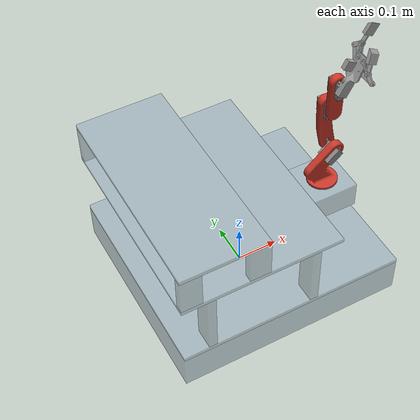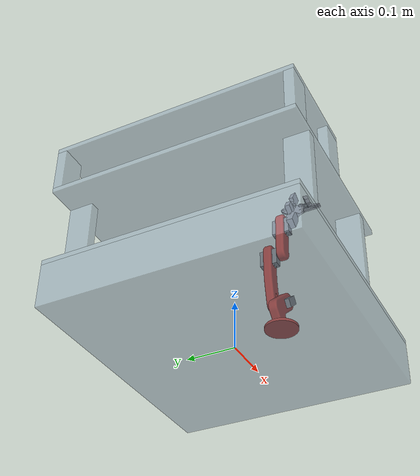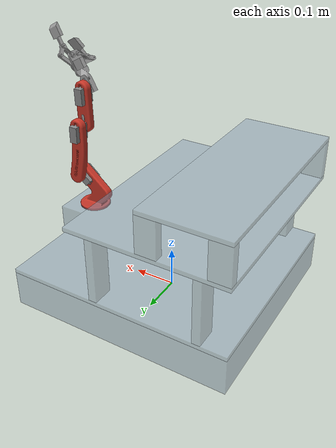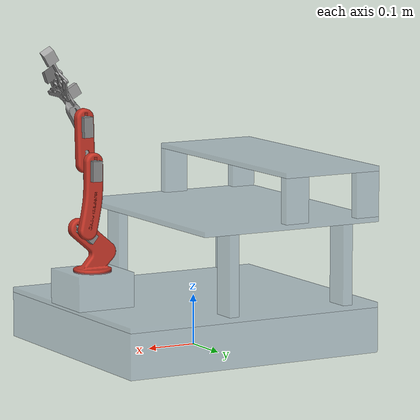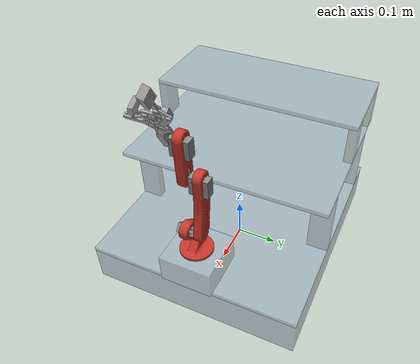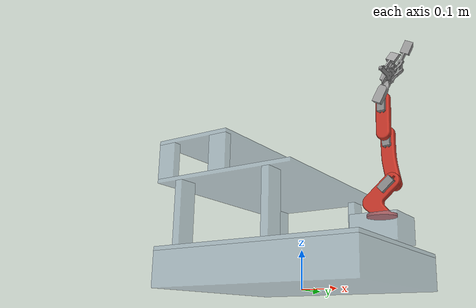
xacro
<?xml version="1.0"?>
<robot xmlns:xacro="http://www.ros.org/wiki/xacro" name="garra_final">

    <xacro:arg name="initial_positions_file" default="$(find garra_moveit_config)/config/initial_positions.yaml"/>
    <!-- Por padrao, hardware simulado. A garra fisica usa launch/garra_real.launch.py. -->
    <xacro:arg name="hardware_plugin" default="mock_components/GenericSystem"/>
    <xacro:arg name="calibracao_file" default="$(find garra_moveit_config)/config/calibracao_servos.yaml"/>
    <xacro:arg name="porta_serial" default="/dev/ttyUSB0"/>

    <!-- Importa a descrição original do robô -->
    <xacro:include filename="$(find garra_final_description)/urdf/garra_final.urdf" />

    <link name="tool0"/>
    <joint name="tool0_fixed" type="fixed">
        <parent link="Base"/>
        <child link="tool0"/>
        <origin xyz="-0.058 -0.1337 -0.0103" rpy="1.6712 0 0"/>
    </joint>

    <link name="dedos_servo"/>
    <joint name="dedos" type="revolute">
        <parent link="Base"/>
        <child link="dedos_servo"/>
        <axis xyz="0 0 1"/>
        <limit lower="0.0" upper="1.745" effort="0.15" velocity="1.30"/>
    </joint>

    <!-- Base -->
    <xacro:property name="base_x" value="0.55"/>
    <xacro:property name="base_y" value="0.50"/>
    <xacro:property name="base_topo" value="0.100"/>
    <!-- Placa da base: mesma espessura dos andares (1 cm). -->
    <xacro:property name="base_esp" value="0.01"/>

    <!-- Andares (alinhados a borda traseira, X = -base_x/2) -->
    <xacro:property name="esp_andar" value="0.01"/>
    <xacro:property name="a1_x" value="0.39"/>
    <xacro:property name="a1_topo" value="0.270"/>
    <xacro:property name="a2_x" value="0.21"/>
    <xacro:property name="a2_topo" value="0.370"/>

    <!-- Suportes do 1o andar: 0.02 (X) x 0.05 (Y), do topo da base ao fundo do 1o andar -->
    <xacro:property name="s1_x_frente" value="0.050"/>
    <xacro:property name="s1_x_tras" value="-0.205"/>
    <!-- PENDENTE: Y dos suportes do 1o andar. Assumido rente a borda lateral. -->
    <xacro:property name="s1_y" value="0.225"/>

    <!-- Suportes do 2o andar: 0.05 (X) x 0.02 (Y), do topo do 1o andar ao fundo do 2o -->
    <xacro:property name="s2_x_frente" value="-0.090"/>
    <xacro:property name="s2_x_tras" value="-0.250"/>
    <xacro:property name="s2_y" value="0.240"/>

    <xacro:property name="garra_x" value="${base_x/2 - 0.050}"/>
    <xacro:property name="garra_z_malha" value="0.0054"/>
    <!-- Plataforma do eixo Y (2026-11-13): eleva a base da garra 68,39 mm acima do topo da base.
         Ainda sem motor: o Y fica fixo no centro. -->
    <xacro:property name="plataforma_z" value="0.06839"/>
    <!-- TEMPORARIO: plataforma como um bloco solido do topo da base ate o pe da garra, um pouco
         maior que o pe dela (malha do base_link: ~0.098 x 0.075 m). Trocar pelas medidas reais. -->
    <xacro:property name="plataforma_lado" value="0.12"/>

    <xacro:macro name="caixa" params="x y z sx sy sz">
        <visual>
            <origin xyz="${x} ${y} ${z}"/>
            <geometry><box size="${sx} ${sy} ${sz}"/></geometry>
            <material name="estrutura_robo"/>
        </visual>
        <collision>
            <origin xyz="${x} ${y} ${z}"/>
            <geometry><box size="${sx} ${sy} ${sz}"/></geometry>
        </collision>
    </xacro:macro>

    <xacro:macro name="andar" params="lx topo">
        <xacro:caixa x="${-base_x/2 + lx/2}" y="0" z="${topo - esp_andar/2}"
                     sx="${lx}" sy="${base_y}" sz="${esp_andar}"/>
    </xacro:macro>

    <xacro:macro name="suporte" params="x y sx sy z0 z1">
        <xacro:caixa x="${x}" y="${y}" z="${(z0 + z1)/2}" sx="${sx}" sy="${sy}" sz="${z1 - z0}"/>
    </xacro:macro>

    <material name="estrutura_robo">
        <color rgba="0.5 0.6 0.7 0.45"/>
    </material>

    <!-- Raiz da arvore: estrutura do robo movel -->
    <link name="robo_base">
        <!-- Chao (Z = 0): 2 x 2 m, so colisao. A garra passa da borda dianteira e alcanca o piso. -->
        <collision>
            <origin xyz="0 0 -0.01"/>
            <geometry><box size="2.0 2.0 0.02"/></geometry>
        </collision>
        <!-- Base -->
        <xacro:caixa x="0" y="0" z="${base_topo - base_esp/2}" sx="${base_x}" sy="${base_y}" sz="${base_esp}"/>
        <!-- PENDENTE: chassi sob a placa da base (rodas, motores). Ate ser medido, fica como volume
             solido do chao ate a placa, para a garra nao planejar por baixo da base. -->
        <xacro:caixa x="0" y="0" z="${(base_topo - base_esp)/2}" sx="${base_x}" sy="${base_y}" sz="${base_topo - base_esp}"/>
        <!-- Plataforma do eixo Y (TEMPORARIO, ver plataforma_lado) -->
        <xacro:caixa x="${garra_x}" y="0" z="${base_topo + plataforma_z/2}"
                     sx="${plataforma_lado}" sy="${plataforma_lado}" sz="${plataforma_z}"/>
        <!-- Andares -->
        <xacro:andar lx="${a1_x}" topo="${a1_topo}"/>
        <xacro:andar lx="${a2_x}" topo="${a2_topo}"/>
        <!-- Suportes do 1o andar -->
        <xacro:suporte x="${s1_x_frente}" y="${ s1_y}" sx="0.02" sy="0.05" z0="${base_topo}" z1="${a1_topo - esp_andar}"/>
        <xacro:suporte x="${s1_x_frente}" y="${-s1_y}" sx="0.02" sy="0.05" z0="${base_topo}" z1="${a1_topo - esp_andar}"/>
        <xacro:suporte x="${s1_x_tras}"   y="${ s1_y}" sx="0.02" sy="0.05" z0="${base_topo}" z1="${a1_topo - esp_andar}"/>
        <xacro:suporte x="${s1_x_tras}"   y="${-s1_y}" sx="0.02" sy="0.05" z0="${base_topo}" z1="${a1_topo - esp_andar}"/>
        <!-- Suportes do 2o andar -->
        <xacro:suporte x="${s2_x_frente}" y="${ s2_y}" sx="0.05" sy="0.02" z0="${a1_topo}" z1="${a2_topo - esp_andar}"/>
        <xacro:suporte x="${s2_x_frente}" y="${-s2_y}" sx="0.05" sy="0.02" z0="${a1_topo}" z1="${a2_topo - esp_andar}"/>
        <xacro:suporte x="${s2_x_tras}"   y="${ s2_y}" sx="0.05" sy="0.02" z0="${a1_topo}" z1="${a2_topo - esp_andar}"/>
        <xacro:suporte x="${s2_x_tras}"   y="${-s2_y}" sx="0.05" sy="0.02" z0="${a1_topo}" z1="${a2_topo - esp_andar}"/>
    </link>

    <joint name="montagem_garra" type="fixed">
        <parent link="robo_base"/>
        <child link="base_link"/>
        <origin xyz="${garra_x} 0 ${base_topo + plataforma_z - garra_z_malha}" rpy="0 0 ${pi}"/>
    </joint>

    <!-- Interface ros2_control (unica definicao do sistema) -->
    <xacro:include filename="$(find garra_moveit_config)/config/garra_final.ros2_control.xacro" />
    <xacro:garra_final_ros2_control
        name="garra_final_system"
        initial_positions_file="$(arg initial_positions_file)"
        hardware_plugin="$(arg hardware_plugin)"
        calibracao_file="$(arg calibracao_file)"
        porta_serial="$(arg porta_serial)"/>

</robot>

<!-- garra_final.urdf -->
<robot name="garra_final">
  <!-- Materials -->
  <material name="Laminado_vermelho_fosco">
    <color rgba="0.769 0.208 0.153 1.0" />
  </material>
  <material name="Alum_nio_prata_anodizada">
    <color rgba="0.537 0.537 0.537 1.0" />
  </material>
  <material name="A_o">
    <color rgba="0.627 0.627 0.627 1.0" />
  </material>
  <link name="base_link">
    <inertial>
      <origin xyz="0.000333 0.000000 0.041536" rpy="0 0 0" />
      <mass value="0.122493" />
      <inertia ixx="1.488707e-04" ixy="0.000000e+00" ixz="3.196556e-05" iyy="1.961067e-04" iyz="0.000000e+00" izz="8.370648e-05" />
    </inertial>
    <visual>
      <origin xyz="0.000000 0.000000 0.000000" rpy="0.000000 0.000000 0.000000" />
      <geometry>
        <mesh filename="package://garra_final_description/meshes/garra_final/base_link.dae" scale="1 1 1" />
      </geometry>
      <material name="Laminado_vermelho_fosco" />
    </visual>
    <collision>
      <origin xyz="0.000000 0.000000 0.000000" rpy="0.000000 0.000000 0.000000" />
      <geometry>
        <mesh filename="package://garra_final_description/meshes/garra_final/base_link.dae" scale="1 1 1" />
      </geometry>
    </collision>
  </link>
  <link name="shoulder_motor">
    <inertial>
      <origin xyz="-0.016764 -0.000763 0.079997" rpy="0 0 0" />
      <mass value="0.089211" />
      <inertia ixx="1.929411e-05" ixy="-4.785893e-08" ixz="4.449074e-06" iyy="1.495797e-05" iyz="4.048953e-08" izz="2.086252e-05" />
    </inertial>
    <visual>
      <origin xyz="0.000000 0.000000 0.000000" rpy="0.000000 0.000000 0.000000" />
      <geometry>
        <mesh filename="package://garra_final_description/meshes/garra_final/shoulder_motor.dae" scale="1 1 1" />
      </geometry>
      <material name="Alum_nio_prata_anodizada" />
    </visual>
    <collision>
      <origin xyz="0.000000 0.000000 0.000000" rpy="0.000000 0.000000 0.000000" />
      <geometry>
        <mesh filename="package://garra_final_description/meshes/garra_final/shoulder_motor.dae" scale="1 1 1" />
      </geometry>
    </collision>
  </link>
  <link name="garra_final_showder_servo_horn">
    <inertial>
      <origin xyz="-0.006829 0.005264 -0.001500" rpy="0 0 0" />
      <mass value="0.007175" />
      <inertia ixx="1.000000e-06" ixy="2.998637e-07" ixz="0.000000e+00" iyy="1.000000e-06" iyz="0.000000e+00" izz="1.000000e-06" />
    </inertial>
    <visual>
      <origin xyz="0.015787 -0.085385 -0.003000" rpy="0.000000 0.000000 0.000000" />
      <geometry>
        <mesh filename="package://garra_final_description/meshes/garra_final/garra_final_showder_servo_horn.dae" scale="1 1 1" />
      </geometry>
      <material name="A_o" />
    </visual>
    <collision>
      <origin xyz="0.015787 -0.085385 -0.003000" rpy="0.000000 0.000000 0.000000" />
      <geometry>
        <mesh filename="package://garra_final_description/meshes/garra_final/garra_final_showder_servo_horn.dae" scale="1 1 1" />
      </geometry>
    </collision>
  </link>
  <link name="M_dulo_1">
    <inertial>
      <origin xyz="0.018424 -0.033973 0.129529" rpy="0 0 0" />
      <mass value="0.096143" />
      <inertia ixx="1.195199e-04" ixy="-1.450615e-07" ixz="-1.036412e-04" iyy="2.332425e-04" iyz="-1.168777e-07" izz="1.209736e-04" />
    </inertial>
    <visual>
      <origin xyz="0.000000 0.000000 0.000000" rpy="0.000000 0.000000 0.000000" />
      <geometry>
        <mesh filename="package://garra_final_description/meshes/garra_final/M_dulo_1.dae" scale="1 1 1" />
      </geometry>
      <material name="Laminado_vermelho_fosco" />
    </visual>
    <collision>
      <origin xyz="0.000000 0.000000 0.000000" rpy="0.000000 0.000000 0.000000" />
      <geometry>
        <mesh filename="package://garra_final_description/meshes/garra_final/M_dulo_1.dae" scale="1 1 1" />
      </geometry>
    </collision>
  </link>
  <link name="MOTOR_1">
    <inertial>
      <origin xyz="0.053925 -0.033237 0.166019" rpy="0 0 0" />
      <mass value="0.089211" />
      <inertia ixx="2.086308e-05" ixy="-4.010090e-08" ixz="-4.448976e-06" iyy="1.495797e-05" iyz="-4.818499e-08" izz="1.929356e-05" />
    </inertial>
    <visual>
      <origin xyz="0.000000 0.000000 0.000000" rpy="0.000000 0.000000 0.000000" />
      <geometry>
        <mesh filename="package://garra_final_description/meshes/garra_final/MOTOR_1.dae" scale="1 1 1" />
      </geometry>
      <material name="Alum_nio_prata_anodizada" />
    </visual>
    <collision>
      <origin xyz="0.000000 0.000000 0.000000" rpy="0.000000 0.000000 0.000000" />
      <geometry>
        <mesh filename="package://garra_final_description/meshes/garra_final/MOTOR_1.dae" scale="1 1 1" />
      </geometry>
    </collision>
  </link>
  <link name="garra_final_showder_servo_horn_2">
    <inertial>
      <origin xyz="-0.006829 0.005264 0.001500" rpy="0 0 0" />
      <mass value="0.007175" />
      <inertia ixx="1.000000e-06" ixy="2.998637e-07" ixz="0.000000e+00" iyy="1.000000e-06" iyz="0.000000e+00" izz="1.000000e-06" />
    </inertial>
    <visual>
      <origin xyz="0.015787 -0.085385 0.000000" rpy="0.000000 0.000000 0.000000" />
      <geometry>
        <mesh filename="package://garra_final_description/meshes/garra_final/garra_final_showder_servo_horn_2.dae" scale="1 1 1" />
      </geometry>
      <material name="A_o" />
    </visual>
    <collision>
      <origin xyz="0.015787 -0.085385 0.000000" rpy="0.000000 0.000000 0.000000" />
      <geometry>
        <mesh filename="package://garra_final_description/meshes/garra_final/garra_final_showder_servo_horn_2.dae" scale="1 1 1" />
      </geometry>
    </collision>
  </link>
  <link name="M_dulo_2">
    <inertial>
      <origin xyz="0.104698 0.000412 0.173614" rpy="0 0 0" />
      <mass value="0.070749" />
      <inertia ixx="1.156834e-05" ixy="1.910002e-07" ixz="-1.551575e-08" iyy="9.825746e-05" iyz="7.836475e-10" izz="9.164356e-05" />
    </inertial>
    <visual>
      <origin xyz="0.000000 0.000000 0.000000" rpy="0.000000 0.000000 0.000000" />
      <geometry>
        <mesh filename="package://garra_final_description/meshes/garra_final/M_dulo_2.dae" scale="1 1 1" />
      </geometry>
      <material name="Laminado_vermelho_fosco" />
    </visual>
    <collision>
      <origin xyz="0.000000 0.000000 0.000000" rpy="0.000000 0.000000 0.000000" />
      <geometry>
        <mesh filename="package://garra_final_description/meshes/garra_final/M_dulo_2.dae" scale="1 1 1" />
      </geometry>
    </collision>
  </link>
  <link name="MOTOR_1_1">
    <inertial>
      <origin xyz="0.137478 0.000880 0.173458" rpy="0 0 0" />
      <mass value="0.089211" />
      <inertia ixx="1.556066e-05" ixy="-6.268823e-08" ixz="-2.821390e-10" iyy="1.495797e-05" iyz="-2.536528e-10" izz="2.459598e-05" />
    </inertial>
    <visual>
      <origin xyz="0.000000 0.000000 0.000000" rpy="0.000000 0.000000 0.000000" />
      <geometry>
        <mesh filename="package://garra_final_description/meshes/garra_final/MOTOR_1_1.dae" scale="1 1 1" />
      </geometry>
      <material name="Alum_nio_prata_anodizada" />
    </visual>
    <collision>
      <origin xyz="0.000000 0.000000 0.000000" rpy="0.000000 0.000000 0.000000" />
      <geometry>
        <mesh filename="package://garra_final_description/meshes/garra_final/MOTOR_1_1.dae" scale="1 1 1" />
      </geometry>
    </collision>
  </link>
  <link name="garra_final_showder_servo_horn_3">
    <inertial>
      <origin xyz="-0.000294 -0.008617 0.001500" rpy="0 0 0" />
      <mass value="0.007175" />
      <inertia ixx="1.000000e-06" ixy="-2.116718e-08" ixz="0.000000e+00" iyy="1.000000e-06" iyz="0.000000e+00" izz="1.000000e-06" />
    </inertial>
    <visual>
      <origin xyz="-0.055746 0.066574 0.003000" rpy="-3.141593 0.000000 0.879928" />
      <geometry>
        <mesh filename="package://garra_final_description/meshes/garra_final/garra_final_showder_servo_horn_3.dae" scale="1 1 1" />
      </geometry>
      <material name="A_o" />
    </visual>
    <collision>
      <origin xyz="-0.055746 0.066574 0.003000" rpy="-3.141593 0.000000 0.879928" />
      <geometry>
        <mesh filename="package://garra_final_description/meshes/garra_final/garra_final_showder_servo_horn_3.dae" scale="1 1 1" />
      </geometry>
    </collision>
  </link>
  <link name="Base">
    <inertial>
      <origin xyz="-0.057386 -0.026808 0.002045" rpy="0 0 0" />
      <mass value="0.191532" />
      <inertia ixx="1.578035e-04" ixy="-3.919167e-07" ixz="4.397693e-08" iyy="1.697283e-05" iyz="-2.047143e-07" izz="1.622377e-04" />
    </inertial>
    <visual>
      <origin xyz="0.000000 0.000000 0.000000" rpy="0.000000 0.000000 0.000000" />
      <geometry>
        <mesh filename="package://garra_final_description/meshes/Configura_o_1/Base.dae" scale="1 1 1" />
      </geometry>
      <material name="A_o" />
    </visual>
    <collision>
      <origin xyz="0.000000 0.000000 0.000000" rpy="0.000000 0.000000 0.000000" />
      <geometry>
        <mesh filename="package://garra_final_description/meshes/Configura_o_1/Base.dae" scale="1 1 1" />
      </geometry>
    </collision>
  </link>
  <link name="Motor">
    <inertial>
      <origin xyz="0.044221 0.026721 0.011750" rpy="0 0 0" />
      <mass value="0.050915" />
      <inertia ixx="4.587663e-06" ixy="0.000000e+00" ixz="0.000000e+00" iyy="2.954137e-06" iyz="0.000000e+00" izz="2.855489e-06" />
    </inertial>
    <visual>
      <origin xyz="0.000000 0.000000 0.000000" rpy="0.000000 0.000000 0.000000" />
      <geometry>
        <mesh filename="package://garra_final_description/meshes/Configura_o_1/Motor.dae" scale="1 1 1" />
      </geometry>
      <material name="A_o" />
    </visual>
    <collision>
      <origin xyz="0.000000 0.000000 0.000000" rpy="0.000000 0.000000 0.000000" />
      <geometry>
        <mesh filename="package://garra_final_description/meshes/Configura_o_1/Motor.dae" scale="1 1 1" />
      </geometry>
    </collision>
  </link>
  <link name="Engr_2">
    <inertial>
      <origin xyz="-0.012589 -0.010130 -0.001895" rpy="0 0 0" />
      <mass value="0.020209" />
      <inertia ixx="2.815627e-06" ixy="-2.942728e-06" ixz="-1.341961e-08" iyy="4.114715e-06" iyz="-1.102947e-08" izz="6.875480e-06" />
    </inertial>
    <visual>
      <origin xyz="0.062176 0.062886 0.004000" rpy="3.141593 0.000000 1.462285" />
      <geometry>
        <mesh filename="package://garra_final_description/meshes/Configura_o_1/Engr_2.dae" scale="1 1 1" />
      </geometry>
      <material name="A_o" />
    </visual>
    <collision>
      <origin xyz="0.062176 0.062886 0.004000" rpy="3.141593 0.000000 1.462285" />
      <geometry>
        <mesh filename="package://garra_final_description/meshes/Configura_o_1/Engr_2.dae" scale="1 1 1" />
      </geometry>
    </collision>
  </link>
  <link name="Junta_1">
    <inertial>
      <origin xyz="-0.013345 -0.006703 -0.002000" rpy="0 0 0" />
      <mass value="0.006788" />
      <inertia ixx="1.000000e-06" ixy="-4.401022e-07" ixz="0.000000e+00" iyy="1.000000e-06" iyz="0.000000e+00" izz="1.165360e-06" />
    </inertial>
    <visual>
      <origin xyz="0.096130 0.039228 -0.008000" rpy="0.000000 0.000000 -0.476992" />
      <geometry>
        <mesh filename="package://garra_final_description/meshes/Configura_o_1/Junta_1.dae" scale="1 1 1" />
      </geometry>
      <material name="A_o" />
    </visual>
    <collision>
      <origin xyz="0.096130 0.039228 -0.008000" rpy="0.000000 0.000000 -0.476992" />
      <geometry>
        <mesh filename="package://garra_final_description/meshes/Configura_o_1/Junta_1.dae" scale="1 1 1" />
      </geometry>
    </collision>
  </link>
  <link name="Junta_1_1">
    <inertial>
      <origin xyz="-0.013345 -0.006703 0.002000" rpy="0 0 0" />
      <mass value="0.006788" />
      <inertia ixx="1.000000e-06" ixy="-4.401022e-07" ixz="0.000000e+00" iyy="1.000000e-06" iyz="0.000000e+00" izz="1.165360e-06" />
    </inertial>
    <visual>
      <origin xyz="0.041768 0.030664 -0.004000" rpy="0.000000 0.000000 -1.733629" />
      <geometry>
        <mesh filename="package://garra_final_description/meshes/Configura_o_1/Junta_1_1.dae" scale="1 1 1" />
      </geometry>
      <material name="A_o" />
    </visual>
    <collision>
      <origin xyz="0.041768 0.030664 -0.004000" rpy="0.000000 0.000000 -1.733629" />
      <geometry>
        <mesh filename="package://garra_final_description/meshes/Configura_o_1/Junta_1_1.dae" scale="1 1 1" />
      </geometry>
    </collision>
  </link>
  <link name="Engr_1">
    <inertial>
      <origin xyz="-0.000027 0.015123 -0.002000" rpy="0 0 0" />
      <mass value="0.023094" />
      <inertia ixx="6.798312e-06" ixy="1.133009e-08" ixz="0.000000e+00" iyy="1.000000e-06" iyz="0.000000e+00" izz="7.204434e-06" />
    </inertial>
    <visual>
      <origin xyz="0.071958 -0.005705 0.004000" rpy="3.141593 0.000000 0.787188" />
      <geometry>
        <mesh filename="package://garra_final_description/meshes/Configura_o_1/Engr_1.dae" scale="1 1 1" />
      </geometry>
      <material name="A_o" />
    </visual>
    <collision>
      <origin xyz="0.071958 -0.005705 0.004000" rpy="3.141593 0.000000 0.787188" />
      <geometry>
        <mesh filename="package://garra_final_description/meshes/Configura_o_1/Engr_1.dae" scale="1 1 1" />
      </geometry>
    </collision>
  </link>
  <link name="Junta_2">
    <inertial>
      <origin xyz="0.007173 0.013099 -0.002000" rpy="0 0 0" />
      <mass value="0.006788" />
      <inertia ixx="1.000000e-06" ixy="-4.622335e-07" ixz="0.000000e+00" iyy="1.000000e-06" iyz="0.000000e+00" izz="1.165360e-06" />
    </inertial>
    <visual>
      <origin xyz="-0.085134 -0.072371 -0.008000" rpy="0.000000 0.000000 2.012283" />
      <geometry>
        <mesh filename="package://garra_final_description/meshes/Configura_o_1/Junta_2.dae" scale="1 1 1" />
      </geometry>
      <material name="A_o" />
    </visual>
    <collision>
      <origin xyz="-0.085134 -0.072371 -0.008000" rpy="0.000000 0.000000 2.012283" />
      <geometry>
        <mesh filename="package://garra_final_description/meshes/Configura_o_1/Junta_2.dae" scale="1 1 1" />
      </geometry>
    </collision>
  </link>
  <link name="Junta">
    <inertial>
      <origin xyz="0.007173 0.013099 0.002000" rpy="0 0 0" />
      <mass value="0.006788" />
      <inertia ixx="1.000000e-06" ixy="-4.622335e-07" ixz="0.000000e+00" iyy="1.000000e-06" iyz="0.000000e+00" izz="1.165360e-06" />
    </inertial>
    <visual>
      <origin xyz="-0.092300 0.010454 -0.004000" rpy="0.000000 0.000000 2.012283" />
      <geometry>
        <mesh filename="package://garra_final_description/meshes/Configura_o_1/Junta.dae" scale="1 1 1" />
      </geometry>
      <material name="A_o" />
    </visual>
    <collision>
      <origin xyz="-0.092300 0.010454 -0.004000" rpy="0.000000 0.000000 2.012283" />
      <geometry>
        <mesh filename="package://garra_final_description/meshes/Configura_o_1/Junta.dae" scale="1 1 1" />
      </geometry>
    </collision>
  </link>
  <link name="P_1">
    <inertial>
      <origin xyz="-0.043864 0.017082 0.002000" rpy="0 0 0" />
      <mass value="0.067383" />
      <inertia ixx="4.266957e-06" ixy="4.103313e-06" ixz="0.000000e+00" iyy="2.329528e-05" iyz="0.000000e+00" izz="2.249340e-05" />
    </inertial>
    <visual>
      <origin xyz="0.090726 0.097578 0.004000" rpy="3.141593 0.000000 1.531470" />
      <geometry>
        <mesh filename="package://garra_final_description/meshes/Configura_o_1/P_1.dae" scale="1 1 1" />
      </geometry>
      <material name="A_o" />
    </visual>
    <collision>
      <origin xyz="0.090726 0.097578 0.004000" rpy="3.141593 0.000000 1.531470" />
      <geometry>
        <mesh filename="package://garra_final_description/meshes/Configura_o_1/P_1.dae" scale="1 1 1" />
      </geometry>
    </collision>
  </link>
  <link name="P_1_1">
    <inertial>
      <origin xyz="-0.036361 -0.029895 0.002000" rpy="0 0 0" />
      <mass value="0.067383" />
      <inertia ixx="8.541989e-06" ixy="-8.939125e-06" ixz="0.000000e+00" iyy="1.902025e-05" iyz="0.000000e+00" izz="2.249340e-05" />
    </inertial>
    <visual>
      <origin xyz="0.076169 0.044258 0.004000" rpy="3.141593 0.000000 1.926866" />
      <geometry>
        <mesh filename="package://garra_final_description/meshes/Configura_o_1/P_1_1.dae" scale="1 1 1" />
      </geometry>
      <material name="A_o" />
    </visual>
    <collision>
      <origin xyz="0.076169 0.044258 0.004000" rpy="3.141593 0.000000 1.926866" />
      <geometry>
        <mesh filename="package://garra_final_description/meshes/Configura_o_1/P_1_1.dae" scale="1 1 1" />
      </geometry>
    </collision>
  </link>
  <joint name="R_gido" type="fixed">
    <parent link="base_link" />
    <child link="shoulder_motor" />
    <origin xyz="-0.002399 0.000644 0.000258" rpy="0.000000 0.011578 0.000000" />
  </joint>
  <joint name="Revolucionar_46" type="revolute">
    <parent link="shoulder_motor" />
    <child link="garra_final_showder_servo_horn" />
    <origin xyz="-0.023838 -0.025144 0.086064" rpy="1.570796 1.131260 0.000000" />
    <axis xyz="0.000000 0.000000 1.000000" />
    <limit lower="-0.63" upper="1.82" effort="1.86" velocity="1.30" />
  </joint>
  <joint name="R_gido_47" type="fixed">
    <parent link="garra_final_showder_servo_horn" />
    <child link="M_dulo_1" />
    <origin xyz="0.074914 0.050317 -0.030000" rpy="-1.570796 0.000000 1.832596" />
  </joint>
  <joint name="R_gido_48" type="fixed">
    <parent link="M_dulo_1" />
    <child link="MOTOR_1" />
    <origin xyz="0.002592 -0.000644 0.004103" rpy="0.000000 0.000000 0.000000" />
  </joint>
  <joint name="Revolucionar_49" type="revolute">
    <parent link="MOTOR_1" />
    <child link="garra_final_showder_servo_horn_2" />
    <origin xyz="0.059838 -0.008856 0.173222" rpy="1.570796 1.536874 0.000000" />
    <axis xyz="0.000000 0.000000 -1.000000" />
    <limit lower="-1.47" upper="1.35" effort="1.86" velocity="1.30" />
  </joint>
  <joint name="R_gido_50" type="fixed">
    <parent link="garra_final_showder_servo_horn_2" />
    <child link="M_dulo_2" />
    <origin xyz="0.160854 0.091479 -0.006666" rpy="-1.570796 0.000000 2.443461" />
  </joint>
  <joint name="R_gido_65" type="fixed">
    <parent link="M_dulo_2" />
    <child link="MOTOR_1_1" />
    <origin xyz="-0.000300 -0.000428 0.000662" rpy="0.000000 0.000000 0.000000" />
  </joint>
  <joint name="Revolucionar_72" type="revolute">
    <parent link="MOTOR_1_1" />
    <child link="garra_final_showder_servo_horn_3" />
    <origin xyz="0.146796 0.022261 0.173559" rpy="1.570796 1.545249 3.141593" />
    <axis xyz="0 0 -1" />
    <limit lower="-1.25" upper="1.3" effort="1.86" velocity="1.30" />
  </joint>
  <joint name="R_gido_73" type="fixed">
    <parent link="garra_final_showder_servo_horn_3" />
    <child link="Base" />
    <origin xyz="0.001272 -0.004945 0.062500" rpy="-0.896983 -1.570796 0.386126" />
  </joint>
  <joint name="R_gido_77" type="fixed">
    <parent link="Base" />
    <child link="Motor" />
    <origin xyz="-0.113471 -0.081721 -0.023500" rpy="0.000000 0.000000 0.000000" />
  </joint>
  <joint name="Revolucionar_85" type="fixed">
    <parent link="Base" />
    <child link="Engr_2" />
    <origin xyz="-0.069250 -0.055000 0.004000" rpy="-3.141593 0.000000 1.570796" />
  </joint>
  <joint name="Revolucionar_87" type="fixed">
    <parent link="Base" />
    <child link="Junta_1" />
    <origin xyz="-0.067140 -0.079000 0.004000" rpy="-3.141593 0.000000 1.570796" />
  </joint>
  <joint name="Revolucionar_89" type="fixed">
    <parent link="Base" />
    <child link="Junta_1_1" />
    <origin xyz="-0.067140 -0.079000 0.000000" rpy="-3.141593 0.000000 1.570796" />
  </joint>
  <joint name="Revolucionar_91" type="fixed">
    <parent link="Base" />
    <child link="Engr_1" />
    <origin xyz="-0.046750 -0.055000 0.004000" rpy="-3.141593 0.000000 1.570796" />
  </joint>
  <joint name="Revolucionar_93" type="fixed">
    <parent link="Base" />
    <child link="Junta_2" />
    <origin xyz="-0.048860 -0.079000 0.004000" rpy="-3.141593 0.000000 1.570796" />
  </joint>
  <joint name="Revolucionar_95" type="fixed">
    <parent link="Base" />
    <child link="Junta" />
    <origin xyz="-0.048860 -0.079000 0.000000" rpy="-3.141593 0.000000 1.570796" />
  </joint>
  <joint name="Revolucionar_86" type="fixed">
    <parent link="Engr_2" />
    <child link="P_1" />
    <origin xyz="-0.035079 -0.028187 0.000000" rpy="0.000000 0.000000 0.000000" />
  </joint>
  <joint name="Revolucionar_92" type="fixed">
    <parent link="Engr_1" />
    <child link="P_1_1" />
    <origin xyz="-0.000081 0.045000 0.000000" rpy="0.000000 0.000000 0.000000" />
  </joint>
  <!-- ROS 2 control: generated generic system -->
</robot>
